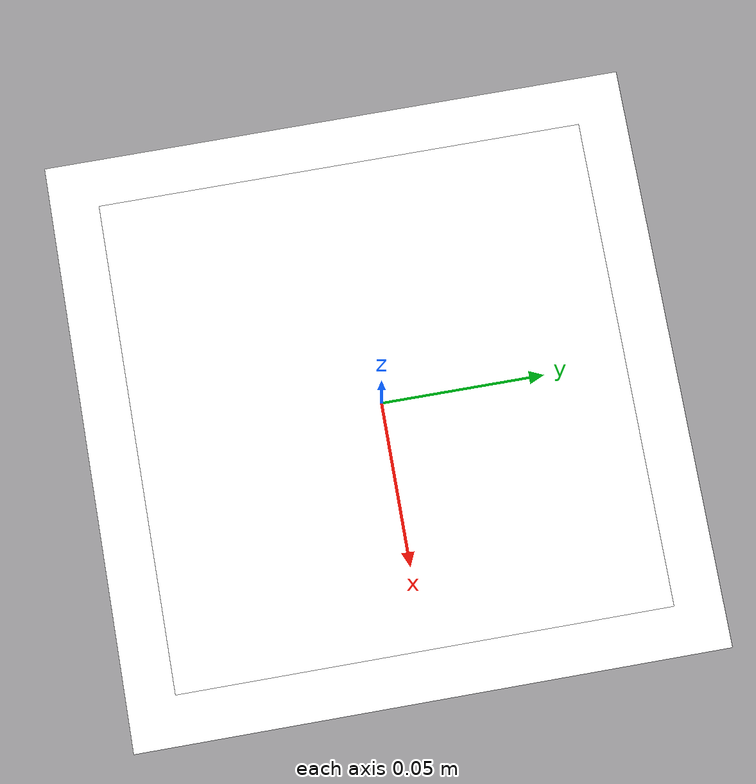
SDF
<?xml version="1.0"?>
<sdf version="1.9">
  <model name="aruco_marker_1">
    <static>true</static>
    <link name="marker_link">

      <!-- Visual representation of the ArUco marker -->
      <visual name="marker_visual">
        <pose>0 0 0 0 0 0</pose>
        <geometry>
          <box>
            <size>0.15 0.15 0.002</size>  <!-- 15cm x 15cm marker, 2mm thick -->
          </box>
        </geometry>
        <material>
          <pbr>
            <metal>
              <albedo_map>model://aruco_marker_1/materials/textures/aruco_marker_1.png</albedo_map>
              <metalness>0.0</metalness>
              <roughness>0.9</roughness>
            </metal>
          </pbr>

          <!-- Placeholder color (remove when using texture) -->
          <ambient>1 1 1 1</ambient>
          <diffuse>1 1 1 1</diffuse>
        </material>
      </visual>

      <!-- White border around the marker (typical for ArUco) -->
      <visual name="border_visual">
        <pose>0 0 -0.001 0 0 0</pose>
        <geometry>
          <box>
            <size>0.18 0.18 0.001</size>  <!-- Slightly larger white backing -->
          </box>
        </geometry>
        <material>
          <ambient>1 1 1 1</ambient>
          <diffuse>1 1 1 1</diffuse>
        </material>
      </visual>

      <!-- Collision geometry -->
      <collision name="marker_collision">
        <pose>0 0 0 0 0 0</pose>
        <geometry>
          <box>
            <size>0.18 0.18 0.005</size>
          </box>
        </geometry>
      </collision>

      <!-- Inertial properties (minimal since static) -->
      <inertial>
        <mass>0.01</mass>
        <inertia>
          <ixx>0.0001</ixx>
          <ixy>0</ixy>
          <ixz>0</ixz>
          <iyy>0.0001</iyy>
          <iyz>0</iyz>
          <izz>0.0001</izz>
        </inertia>
      </inertial>

    </link>
  </model>
</sdf>
